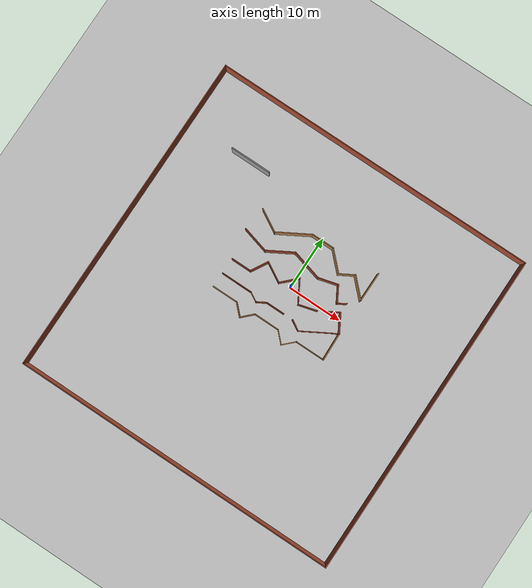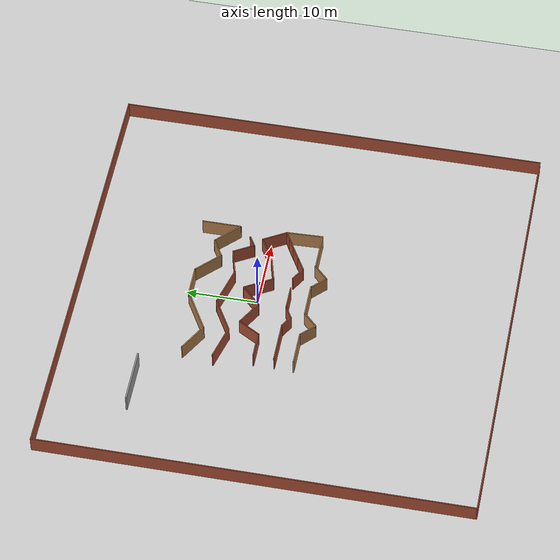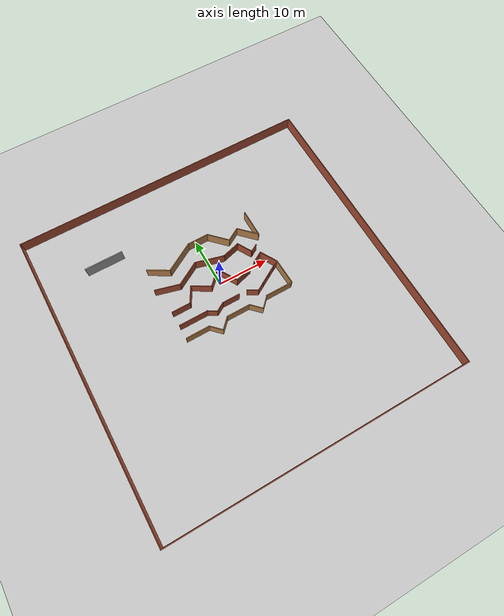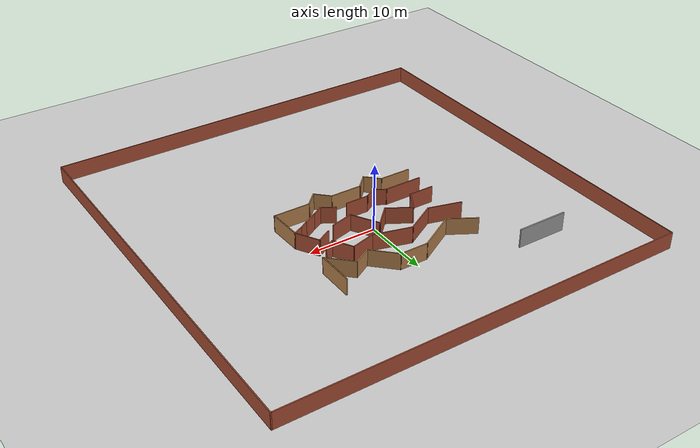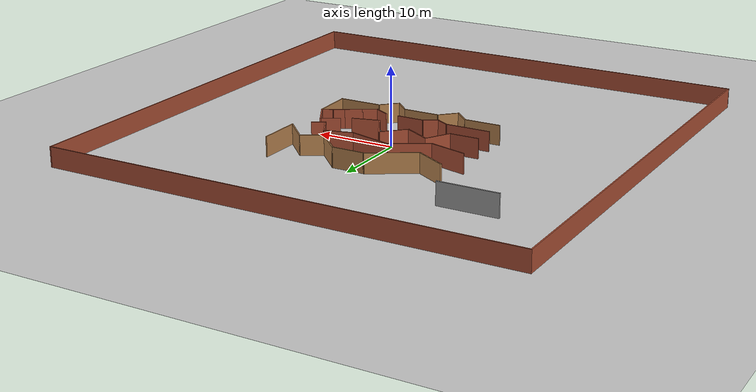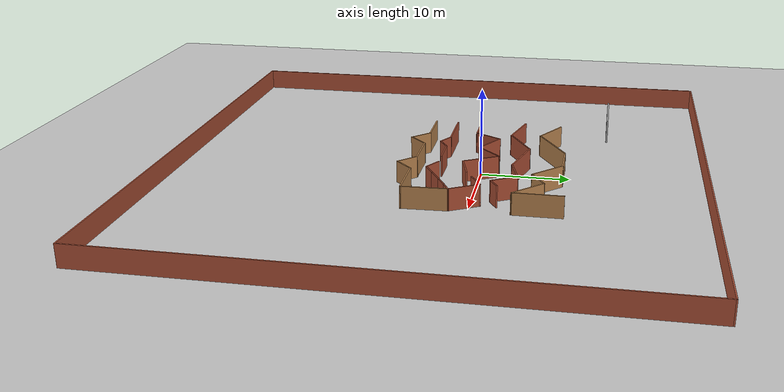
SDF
<sdf version="1.6">
 <world name="default">
  <light name="sun" type="directional">
   <pose>0 0 10 0 -0 0</pose>
   <diffuse>0.8 0.8 0.8 1</diffuse>
   <specular>0.2 0.2 0.2 1</specular>
   <attenuation>
    <range>1000</range>
    <constant>0.9</constant>
    <linear>0.01</linear>
    <quadratic>0.001</quadratic>
   </attenuation>
   <direction>-0.5 0.1 -0.9</direction>
   <spot><inner_angle>0</inner_angle><outer_angle>0</outer_angle><falloff>0</falloff></spot>
  </light>
  <gravity>0 0 -9.8</gravity>
  <magnetic_field>6e-06 2.3e-05 -4.2e-05</magnetic_field>
  <atmosphere type="adiabatic"/>
  <physics name="default_physics" default="0" type="ode">
   <max_step_size>0.001</max_step_size>
   <real_time_factor>1</real_time_factor>
   <real_time_update_rate>1000</real_time_update_rate>
  </physics>
  <scene><ambient>0.4 0.4 0.4 1</ambient><background>0.7 0.7 0.7 1</background><shadows>1</shadows></scene>
  <spherical_coordinates>
   <surface_model>EARTH_WGS84</surface_model>
   <latitude_deg>0</latitude_deg>
   <longitude_deg>0</longitude_deg>
   <elevation>0</elevation>
   <heading_deg>0</heading_deg>
  </spherical_coordinates>
  <model name="ground_plane">
   <static>1</static>
   <link name="link">
    <collision name="collision">
     <geometry><plane><normal>0 0 1</normal><size>100 100</size></plane></geometry>
     <surface>
      <contact><collide_bitmask>65535</collide_bitmask></contact>
      <friction><ode><mu>100</mu><mu2>50</mu2></ode></friction>
     </surface>
    </collision>
    <visual name="visual">
     <cast_shadows>0</cast_shadows>
     <geometry><plane><normal>0 0 1</normal><size>100 100</size></plane></geometry>
     <material>
      <script><uri>file://media/materials/scripts/gazebo.material</uri><name>Gazebo/Grey</name></script>
     </material>
    </visual>
   </link>
   <pose>0.408001 -0.283487 0 0 -0 0</pose>
  </model>
  <model name="road1">
   <pose>-0.21073 0.52345 0 0 -0 0</pose>
   <link name="Wall_11">
    <collision name="Wall_11_Collision">
     <geometry><box><size>4.75 0.15 2.5</size></box></geometry>
     <pose>0 0 1.25 0 -0 0</pose>
    </collision>
    <visual name="Wall_11_Visual">
     <pose>0 0 1.25 0 -0 0</pose>
     <geometry><box><size>4.75 0.15 2.5</size></box></geometry>
     <material>
      <script><uri>file://media/materials/scripts/gazebo.material</uri><name>Gazebo/Wood</name></script>
      <ambient>1 1 1 1</ambient>
     </material>
     <meta><layer>0</layer></meta>
    </visual>
    <pose>-8.19181 -7.53771 0 0 -0 0</pose>
   </link>
   <link name="Wall_12">
    <collision name="Wall_12_Collision">
     <geometry><box><size>2.75 0.15 2.5</size></box></geometry>
     <pose>0 0 1.25 0 -0 0</pose>
    </collision>
    <visual name="Wall_12_Visual">
     <pose>0 0 1.25 0 -0 0</pose>
     <geometry><box><size>2.75 0.15 2.5</size></box></geometry>
     <material>
      <script><uri>file://media/materials/scripts/gazebo.material</uri><name>Gazebo/Wood</name></script>
      <ambient>1 1 1 1</ambient>
     </material>
     <meta><layer>0</layer></meta>
    </visual>
    <pose>-4.97257 -8.45695 0 0 -0 -0.785398</pose>
   </link>
   <link name="Wall_13">
    <collision name="Wall_13_Collision">
     <geometry><box><size>2.75 0.15 2.5</size></box></geometry>
     <pose>0 0 1.25 0 -0 0</pose>
    </collision>
    <visual name="Wall_13_Visual">
     <pose>0 0 1.25 0 -0 0</pose>
     <geometry><box><size>2.75 0.15 2.5</size></box></geometry>
     <material>
      <script><uri>file://media/materials/scripts/gazebo.material</uri><name>Gazebo/Wood</name></script>
      <ambient>1 1 1 1</ambient>
     </material>
     <meta><layer>0</layer></meta>
    </visual>
    <pose>-3.13409 -8.45695 0 0 -0 0.785398</pose>
   </link>
   <link name="Wall_14">
    <collision name="Wall_14_Collision">
     <geometry><box><size>4.75 0.15 2.5</size></box></geometry>
     <pose>0 0 1.25 0 -0 0</pose>
    </collision>
    <visual name="Wall_14_Visual">
     <pose>0 0 1.25 0 -0 0</pose>
     <geometry><box><size>4.75 0.15 2.5</size></box></geometry>
     <material>
      <script><uri>file://media/materials/scripts/gazebo.material</uri><name>Gazebo/Wood</name></script>
      <ambient>1 1 1 1</ambient>
     </material>
     <meta><layer>0</layer></meta>
    </visual>
    <pose>0.085145 -7.53771 0 0 -0 0</pose>
   </link>
   <link name="Wall_15">
    <collision name="Wall_15_Collision">
     <geometry><box><size>2.75 0.15 2.5</size></box></geometry>
     <pose>0 0 1.25 0 -0 0</pose>
    </collision>
    <visual name="Wall_15_Visual">
     <pose>0 0 1.25 0 -0 0</pose>
     <geometry><box><size>2.75 0.15 2.5</size></box></geometry>
     <material>
      <script><uri>file://media/materials/scripts/gazebo.material</uri><name>Gazebo/Wood</name></script>
      <ambient>1 1 1 1</ambient>
     </material>
     <meta><layer>0</layer></meta>
    </visual>
    <pose>3.30438 -8.45695 0 0 -0 -0.785398</pose>
   </link>
   <link name="Wall_16">
    <collision name="Wall_16_Collision">
     <geometry><box><size>2.75 0.15 2.5</size></box></geometry>
     <pose>0 0 1.25 0 -0 0</pose>
    </collision>
    <visual name="Wall_16_Visual">
     <pose>0 0 1.25 0 -0 0</pose>
     <geometry><box><size>2.75 0.15 2.5</size></box></geometry>
     <material>
      <script><uri>file://media/materials/scripts/gazebo.material</uri><name>Gazebo/Wood</name></script>
      <ambient>1 1 1 1</ambient>
     </material>
     <meta><layer>0</layer></meta>
    </visual>
    <pose>5.14286 -8.45695 0 0 -0 0.785398</pose>
   </link>
   <link name="Wall_17">
    <collision name="Wall_17_Collision">
     <geometry><box><size>5.5 0.15 2.5</size></box></geometry>
     <pose>0 0 1.25 0 -0 0</pose>
    </collision>
    <visual name="Wall_17_Visual">
     <pose>0 0 1.25 0 -0 0</pose>
     <geometry><box><size>5.5 0.15 2.5</size></box></geometry>
     <material>
      <script><uri>file://media/materials/scripts/gazebo.material</uri><name>Gazebo/Wood</name></script>
      <ambient>1 1 1 1</ambient>
     </material>
     <meta><layer>0</layer></meta>
    </visual>
    <pose>8.7371 -7.53771 0 0 -0 0</pose>
   </link>
   <link name="Wall_19">
    <collision name="Wall_19_Collision">
     <geometry><box><size>5.75 0.15 2.5</size></box></geometry>
     <pose>0 0 1.25 0 -0 0</pose>
    </collision>
    <visual name="Wall_19_Visual">
     <pose>0 0 1.25 0 -0 0</pose>
     <geometry><box><size>5.75 0.15 2.5</size></box></geometry>
     <material>
      <script><uri>file://media/materials/scripts/gazebo.material</uri><name>Gazebo/Bricks</name></script>
      <ambient>1 1 1 1</ambient>
     </material>
     <meta><layer>0</layer></meta>
    </visual>
    <pose>-7.63063 -4.84577 0 0 -0 0</pose>
   </link>
   <link name="Wall_20">
    <collision name="Wall_20_Collision">
     <geometry><box><size>2 0.15 2.5</size></box></geometry>
     <pose>0 0 1.25 0 -0 0</pose>
    </collision>
    <visual name="Wall_20_Visual">
     <pose>0 0 1.25 0 -0 0</pose>
     <geometry><box><size>2 0.15 2.5</size></box></geometry>
     <material>
      <script><uri>file://media/materials/scripts/gazebo.material</uri><name>Gazebo/Bricks</name></script>
      <ambient>1 1 1 1</ambient>
     </material>
     <meta><layer>0</layer></meta>
    </visual>
    <pose>-4.02956 -5.30827 0 0 -0 -0.523599</pose>
   </link>
   <link name="Wall_21">
    <collision name="Wall_21_Collision">
     <geometry><box><size>2 0.15 2.5</size></box></geometry>
     <pose>0 0 1.25 0 -0 0</pose>
    </collision>
    <visual name="Wall_21_Visual">
     <pose>0 0 1.25 0 -0 0</pose>
     <geometry><box><size>2 0.15 2.5</size></box></geometry>
     <material>
      <script><uri>file://media/materials/scripts/gazebo.material</uri><name>Gazebo/Bricks</name></script>
      <ambient>1 1 1 1</ambient>
     </material>
     <meta><layer>0</layer></meta>
    </visual>
    <pose>-2.42741 -5.30827 0 0 -0 0.523599</pose>
   </link>
   <link name="Wall_23">
    <collision name="Wall_23_Collision">
     <geometry><box><size>2.25 0.15 2.5</size></box></geometry>
     <pose>0 0 1.25 0 -0 0</pose>
    </collision>
    <visual name="Wall_23_Visual">
     <pose>0 0 1.25 0 -0 0</pose>
     <geometry><box><size>2.25 0.15 2.5</size></box></geometry>
     <material>
      <script><uri>file://media/materials/scripts/gazebo.material</uri><name>Gazebo/Bricks</name></script>
      <ambient>1 1 1 1</ambient>
     </material>
     <meta><layer>0</layer></meta>
    </visual>
    <pose>4.38299 -5.37077 0 0 -0 -0.523599</pose>
   </link>
   <link name="Wall_24">
    <collision name="Wall_24_Collision">
     <geometry><box><size>2 0.15 2.5</size></box></geometry>
     <pose>0 0 1.25 0 -0 0</pose>
    </collision>
    <visual name="Wall_24_Visual">
     <pose>0 0 1.25 0 -0 0</pose>
     <geometry><box><size>2 0.15 2.5</size></box></geometry>
     <material>
      <script><uri>file://media/materials/scripts/gazebo.material</uri><name>Gazebo/Bricks</name></script>
      <ambient>1 1 1 1</ambient>
     </material>
     <meta><layer>0</layer></meta>
    </visual>
    <pose>6.09339 -5.43327 0 0 -0 0.523599</pose>
   </link>
   <link name="Wall_28">
    <collision name="Wall_28_Collision">
     <geometry><box><size>3.75 0.15 2.5</size></box></geometry>
     <pose>0 0 1.25 0 -0 0</pose>
    </collision>
    <visual name="Wall_28_Visual">
     <pose>0 0 1.25 0 -0 0</pose>
     <geometry><box><size>3.75 0.15 2.5</size></box></geometry>
     <material>
      <script><uri>file://media/materials/scripts/gazebo.material</uri><name>Gazebo/Bricks</name></script>
      <ambient>1 1 1 1</ambient>
     </material>
     <meta><layer>0</layer></meta>
    </visual>
    <pose>-8.66122 -1.97029 0 0 -0 0</pose>
   </link>
   <link name="Wall_29">
    <collision name="Wall_29_Collision">
     <geometry><box><size>3.5 0.15 2.5</size></box></geometry>
     <pose>0 0 1.25 0 -0 0</pose>
    </collision>
    <visual name="Wall_29_Visual">
     <pose>0 0 1.25 0 -0 0</pose>
     <geometry><box><size>3.5 0.15 2.5</size></box></geometry>
     <material>
      <script><uri>file://media/materials/scripts/gazebo.material</uri><name>Gazebo/Bricks</name></script>
      <ambient>1 1 1 1</ambient>
     </material>
     <meta><layer>0</layer></meta>
    </visual>
    <pose>-6.02372 -0.519697 0 0 -0 1.0472</pose>
   </link>
   <link name="Wall_30">
    <collision name="Wall_30_Collision">
     <geometry><box><size>4 0.15 2.5</size></box></geometry>
     <pose>0 0 1.25 0 -0 0</pose>
    </collision>
    <visual name="Wall_30_Visual">
     <pose>0 0 1.25 0 -0 0</pose>
     <geometry><box><size>4 0.15 2.5</size></box></geometry>
     <material>
      <script><uri>file://media/materials/scripts/gazebo.material</uri><name>Gazebo/Bricks</name></script>
      <ambient>1 1 1 1</ambient>
     </material>
     <meta><layer>0</layer></meta>
    </visual>
    <pose>-3.51912 -0.031604 0 0 -0 -0.523599</pose>
   </link>
   <link name="Wall_31">
    <collision name="Wall_31_Collision">
     <geometry><box><size>3.75 0.15 2.5</size></box></geometry>
     <pose>0 0 1.25 0 -0 0</pose>
    </collision>
    <visual name="Wall_31_Visual">
     <pose>0 0 1.25 0 -0 0</pose>
     <geometry><box><size>3.75 0.15 2.5</size></box></geometry>
     <material>
      <script><uri>file://media/materials/scripts/gazebo.material</uri><name>Gazebo/Bricks</name></script>
      <ambient>1 1 1 1</ambient>
     </material>
     <meta><layer>0</layer></meta>
    </visual>
    <pose>-0.57923 0.278688 0 0 -0 0.785398</pose>
   </link>
   <link name="Wall_32">
    <collision name="Wall_32_Collision">
     <geometry><box><size>4.5 0.15 2.5</size></box></geometry>
     <pose>0 0 1.25 0 -0 0</pose>
    </collision>
    <visual name="Wall_32_Visual">
     <pose>0 0 1.25 0 -0 0</pose>
     <geometry><box><size>4.5 0.15 2.5</size></box></geometry>
     <material>
      <script><uri>file://media/materials/scripts/gazebo.material</uri><name>Gazebo/Bricks</name></script>
      <ambient>1 1 1 1</ambient>
     </material>
     <meta><layer>0</layer></meta>
    </visual>
    <pose>1.78106 -0.332125 0 0 -0 -1.0472</pose>
   </link>
   <link name="Wall_33">
    <collision name="Wall_33_Collision">
     <geometry><box><size>3.5 0.15 2.5</size></box></geometry>
     <pose>0 0 1.25 0 -0 0</pose>
    </collision>
    <visual name="Wall_33_Visual">
     <pose>0 0 1.25 0 -0 0</pose>
     <geometry><box><size>3.5 0.15 2.5</size></box></geometry>
     <material>
      <script><uri>file://media/materials/scripts/gazebo.material</uri><name>Gazebo/Bricks</name></script>
      <ambient>1 1 1 1</ambient>
     </material>
     <meta><layer>0</layer></meta>
    </visual>
    <pose>4.48649 -1.78221 0 0 -0 0.261799</pose>
   </link>
   <link name="Wall_35">
    <collision name="Wall_35_Collision">
     <geometry><box><size>3.75 0.15 2.5</size></box></geometry>
     <pose>0 0 1.25 0 -0 0</pose>
    </collision>
    <visual name="Wall_35_Visual">
     <pose>0 0 1.25 0 -0 0</pose>
     <geometry><box><size>3.75 0.15 2.5</size></box></geometry>
     <material>
      <script><uri>file://media/materials/scripts/gazebo.material</uri><name>Gazebo/Bricks</name></script>
      <ambient>1 1 1 1</ambient>
     </material>
     <meta><layer>0</layer></meta>
    </visual>
    <pose>10.3386 -0.982532 0 0 -0 -1.0472</pose>
   </link>
   <link name="Wall_36">
    <collision name="Wall_36_Collision">
     <geometry><box><size>1.52852 0.15 2.5</size></box></geometry>
     <pose>0 0 1.25 0 -0 0</pose>
    </collision>
    <visual name="Wall_36_Visual">
     <pose>0 0 1.25 0 -0 0</pose>
     <geometry><box><size>1.52852 0.15 2.5</size></box></geometry>
     <material>
      <script><uri>file://media/materials/scripts/gazebo.material</uri><name>Gazebo/Bricks</name></script>
      <ambient>1 1 1 1</ambient>
     </material>
     <meta><layer>0</layer></meta>
    </visual>
    <pose>10.6254 -2.85608 0 0 -0 -2.66746</pose>
   </link>
   <link name="Wall_38">
    <collision name="Wall_38_Collision">
     <geometry><box><size>2.5 0.15 2.5</size></box></geometry>
     <pose>0 0 1.25 0 -0 0</pose>
    </collision>
    <visual name="Wall_38_Visual">
     <pose>0 0 1.25 0 -0 0</pose>
     <geometry><box><size>2.5 0.15 2.5</size></box></geometry>
     <material>
      <script><uri>file://media/materials/scripts/gazebo.material</uri><name>Gazebo/Bricks</name></script>
      <ambient>1 1 1 1</ambient>
     </material>
     <meta><layer>0</layer></meta>
    </visual>
    <pose>8.42103 -0.011187 0 0 -0 -2.61799</pose>
   </link>
   <link name="Wall_40">
    <collision name="Wall_40_Collision">
     <geometry><box><size>2.25 0.15 2.5</size></box></geometry>
     <pose>0 0 1.25 0 -0 0</pose>
    </collision>
    <visual name="Wall_40_Visual">
     <pose>0 0 1.25 0 -0 0</pose>
     <geometry><box><size>2.25 0.15 2.5</size></box></geometry>
     <material>
      <script><uri>file://media/materials/scripts/gazebo.material</uri><name>Gazebo/Bricks</name></script>
      <ambient>1 1 1 1</ambient>
     </material>
     <meta><layer>0</layer></meta>
    </visual>
    <pose>7.80379 -4.44577 0 0 -0 0.523599</pose>
   </link>
   <link name="Wall_42">
    <collision name="Wall_42_Collision">
     <geometry><box><size>5.14934 0.15 2.5</size></box></geometry>
     <pose>0 0 1.25 0 -0 0</pose>
    </collision>
    <visual name="Wall_42_Visual">
     <pose>0 0 1.25 0 -0 0</pose>
     <geometry><box><size>5.14934 0.15 2.5</size></box></geometry>
     <material>
      <script><uri>file://media/materials/scripts/gazebo.material</uri><name>Gazebo/Wood</name></script>
      <ambient>1 1 1 1</ambient>
     </material>
     <meta><layer>0</layer></meta>
    </visual>
    <pose>11.3254 -5.03955 0 0 -0 1.60551</pose>
   </link>
   <link name="Wall_44">
    <collision name="Wall_44_Collision">
     <geometry><box><size>1.65 0.15 2.5</size></box></geometry>
     <pose>0 0 1.25 0 -0 0</pose>
    </collision>
    <visual name="Wall_44_Visual">
     <pose>0 0 1.25 0 -0 0</pose>
     <geometry><box><size>1.65 0.15 2.5</size></box></geometry>
     <material>
      <script><uri>file://media/materials/scripts/gazebo.material</uri><name>Gazebo/Bricks</name></script>
      <ambient>1 1 1 1</ambient>
     </material>
     <meta><layer>0</layer></meta>
    </visual>
    <pose>9.36264 -3.54577 0 0 -0 0.523599</pose>
   </link>
   <link name="Wall_48">
    <collision name="Wall_48_Collision">
     <geometry><box><size>3.5 0.15 2.5</size></box></geometry>
     <pose>0 0 1.25 0 -0 0</pose>
    </collision>
    <visual name="Wall_48_Visual">
     <pose>0 0 1.25 0 -0 0</pose>
     <geometry><box><size>3.5 0.15 2.5</size></box></geometry>
     <material>
      <script><uri>file://media/materials/scripts/gazebo.material</uri><name>Gazebo/Bricks</name></script>
      <ambient>1 1 1 1</ambient>
     </material>
     <meta><layer>0</layer></meta>
    </visual>
    <pose>0.048665 -4.84577 0 0 -0 0</pose>
   </link>
   <link name="Wall_50">
    <collision name="Wall_50_Collision">
     <geometry><box><size>5 0.15 2.5</size></box></geometry>
     <pose>0 0 1.25 0 -0 0</pose>
    </collision>
    <visual name="Wall_50_Visual">
     <pose>0 0 1.25 0 -0 0</pose>
     <geometry><box><size>5 0.15 2.5</size></box></geometry>
     <material>
      <script><uri>file://media/materials/scripts/gazebo.material</uri><name>Gazebo/Bricks</name></script>
      <ambient>1 1 1 1</ambient>
     </material>
     <meta><layer>0</layer></meta>
    </visual>
    <pose>-9.05543 2.81224 0 0 -0 -0.261799</pose>
   </link>
   <link name="Wall_51">
    <collision name="Wall_51_Collision">
     <geometry><box><size>5.25 0.15 2.5</size></box></geometry>
     <pose>0 0 1.25 0 -0 0</pose>
    </collision>
    <visual name="Wall_51_Visual">
     <pose>0 0 1.25 0 -0 0</pose>
     <geometry><box><size>5.25 0.15 2.5</size></box></geometry>
     <material>
      <script><uri>file://media/materials/scripts/gazebo.material</uri><name>Gazebo/Bricks</name></script>
      <ambient>1 1 1 1</ambient>
     </material>
     <meta><layer>0</layer></meta>
    </visual>
    <pose>-4.5047 3.4596 0 0 -0 0.523599</pose>
   </link>
   <link name="Wall_52">
    <collision name="Wall_52_Collision">
     <geometry><box><size>5.75 0.15 2.5</size></box></geometry>
     <pose>0 0 1.25 0 -0 0</pose>
    </collision>
    <visual name="Wall_52_Visual">
     <pose>0 0 1.25 0 -0 0</pose>
     <geometry><box><size>5.75 0.15 2.5</size></box></geometry>
     <material>
      <script><uri>file://media/materials/scripts/gazebo.material</uri><name>Gazebo/Bricks</name></script>
      <ambient>1 1 1 1</ambient>
     </material>
     <meta><layer>0</layer></meta>
    </visual>
    <pose>0.408259 4.00991 0 0 -0 -0.261799</pose>
   </link>
   <link name="Wall_53">
    <collision name="Wall_53_Collision">
     <geometry><box><size>3.75 0.15 2.5</size></box></geometry>
     <pose>0 0 1.25 0 -0 0</pose>
    </collision>
    <visual name="Wall_53_Visual">
     <pose>0 0 1.25 0 -0 0</pose>
     <geometry><box><size>3.75 0.15 2.5</size></box></geometry>
     <material>
      <script><uri>file://media/materials/scripts/gazebo.material</uri><name>Gazebo/Bricks</name></script>
      <ambient>1 1 1 1</ambient>
     </material>
     <meta><layer>0</layer></meta>
    </visual>
    <pose>4.85152 3.75109 0 0 -0 0.261799</pose>
   </link>
   <link name="Wall_54">
    <collision name="Wall_54_Collision">
     <geometry><box><size>3.25 0.15 2.5</size></box></geometry>
     <pose>0 0 1.25 0 -0 0</pose>
    </collision>
    <visual name="Wall_54_Visual">
     <pose>0 0 1.25 0 -0 0</pose>
     <geometry><box><size>3.25 0.15 2.5</size></box></geometry>
     <material>
      <script><uri>file://media/materials/scripts/gazebo.material</uri><name>Gazebo/Bricks</name></script>
      <ambient>1 1 1 1</ambient>
     </material>
     <meta><layer>0</layer></meta>
    </visual>
    <pose>7.36519 2.87463 0 0 -0 -1.0472</pose>
   </link>
   <link name="Wall_55">
    <collision name="Wall_55_Collision">
     <geometry><box><size>1.75 0.15 2.5</size></box></geometry>
     <pose>0 0 1.25 0 -0 0</pose>
    </collision>
    <visual name="Wall_55_Visual">
     <pose>0 0 1.25 0 -0 0</pose>
     <geometry><box><size>1.75 0.15 2.5</size></box></geometry>
     <material>
      <script><uri>file://media/materials/scripts/gazebo.material</uri><name>Gazebo/Bricks</name></script>
      <ambient>1 1 1 1</ambient>
     </material>
     <meta><layer>0</layer></meta>
    </visual>
    <pose>8.833 1.93229 0 0 -0 0.523599</pose>
   </link>
   <link name="Wall_57">
    <collision name="Wall_57_Collision">
     <geometry><box><size>4.5 0.15 2.5</size></box></geometry>
     <pose>0 0 1.25 0 -0 0</pose>
    </collision>
    <visual name="Wall_57_Visual">
     <pose>0 0 1.25 0 -0 0</pose>
     <geometry><box><size>4.5 0.15 2.5</size></box></geometry>
     <material>
      <script><uri>file://media/materials/scripts/gazebo.material</uri><name>Gazebo/Wood</name></script>
      <ambient>1 1 1 1</ambient>
     </material>
     <meta><layer>0</layer></meta>
    </visual>
    <pose>-8.96765 6.69658 0 0 -0 -0.523599</pose>
   </link>
   <link name="Wall_58">
    <collision name="Wall_58_Collision">
     <geometry><box><size>6.5 0.15 2.5</size></box></geometry>
     <pose>0 0 1.25 0 -0 0</pose>
    </collision>
    <visual name="Wall_58_Visual">
     <pose>0 0 1.25 0 -0 0</pose>
     <geometry><box><size>6.5 0.15 2.5</size></box></geometry>
     <material>
      <script><uri>file://media/materials/scripts/gazebo.material</uri><name>Gazebo/Wood</name></script>
      <ambient>1 1 1 1</ambient>
     </material>
     <meta><layer>0</layer></meta>
    </visual>
    <pose>-4.33442 7.19658 0 0 -0 0.523599</pose>
   </link>
   <link name="Wall_59">
    <collision name="Wall_59_Collision">
     <geometry><box><size>4.25 0.15 2.5</size></box></geometry>
     <pose>0 0 1.25 0 -0 0</pose>
    </collision>
    <visual name="Wall_59_Visual">
     <pose>0 0 1.25 0 -0 0</pose>
     <geometry><box><size>4.25 0.15 2.5</size></box></geometry>
     <material>
      <script><uri>file://media/materials/scripts/gazebo.material</uri><name>Gazebo/Wood</name></script>
      <ambient>1 1 1 1</ambient>
     </material>
     <meta><layer>0</layer></meta>
    </visual>
    <pose>0.465213 8.78408 0 0 -0 0</pose>
   </link>
   <link name="Wall_60">
    <collision name="Wall_60_Collision">
     <geometry><box><size>4.5 0.15 2.5</size></box></geometry>
     <pose>0 0 1.25 0 -0 0</pose>
    </collision>
    <visual name="Wall_60_Visual">
     <pose>0 0 1.25 0 -0 0</pose>
     <geometry><box><size>4.5 0.15 2.5</size></box></geometry>
     <material>
      <script><uri>file://media/materials/scripts/gazebo.material</uri><name>Gazebo/Wood</name></script>
      <ambient>1 1 1 1</ambient>
     </material>
     <meta><layer>0</layer></meta>
    </visual>
    <pose>4.05317 7.24613 0 0 -0 -0.785398</pose>
   </link>
   <link name="Wall_61">
    <collision name="Wall_61_Collision">
     <geometry><box><size>3 0.15 2.5</size></box></geometry>
     <pose>0 0 1.25 0 -0 0</pose>
    </collision>
    <visual name="Wall_61_Visual">
     <pose>0 0 1.25 0 -0 0</pose>
     <geometry><box><size>3 0.15 2.5</size></box></geometry>
     <material>
      <script><uri>file://media/materials/scripts/gazebo.material</uri><name>Gazebo/Wood</name></script>
      <ambient>1 1 1 1</ambient>
     </material>
     <meta><layer>0</layer></meta>
    </visual>
    <pose>6.82521 6.42067 0 0 -0 0.523599</pose>
   </link>
   <link name="Wall_62">
    <collision name="Wall_62_Collision">
     <geometry><box><size>4.5 0.15 2.5</size></box></geometry>
     <pose>0 0 1.25 0 -0 0</pose>
    </collision>
    <visual name="Wall_62_Visual">
     <pose>0 0 1.25 0 -0 0</pose>
     <geometry><box><size>4.5 0.15 2.5</size></box></geometry>
     <material>
      <script><uri>file://media/materials/scripts/gazebo.material</uri><name>Gazebo/Wood</name></script>
      <ambient>1 1 1 1</ambient>
     </material>
     <meta><layer>0</layer></meta>
    </visual>
    <pose>9.59726 5.59521 0 0 -0 -0.785398</pose>
   </link>
   <link name="Wall_64">
    <collision name="Wall_64_Collision">
     <geometry><box><size>5.5 0.15 2.5</size></box></geometry>
     <pose>0 0 1.25 0 -0 0</pose>
    </collision>
    <visual name="Wall_64_Visual">
     <pose>0 0 1.25 0 -0 0</pose>
     <geometry><box><size>5.5 0.15 2.5</size></box></geometry>
     <material>
      <script><uri>file://media/materials/scripts/gazebo.material</uri><name>Gazebo/Wood</name></script>
      <ambient>1 1 1 1</ambient>
     </material>
     <meta><layer>0</layer></meta>
    </visual>
    <pose>11.1352 6.73226 0 0 -0 1.5708</pose>
   </link>
   <static>1</static>
  </model>
  <model name="grey_wall_clone">
   <static>1</static>
   <link name="link">
    <pose>0 0 1.4 0 -0 0</pose>
    <collision name="collision"><geometry><box><size>7.5 0.2 2.8</size></box></geometry></collision>
    <visual name="visual">
     <cast_shadows>0</cast_shadows>
     <geometry><box><size>7.5 0.2 2.8</size></box></geometry>
     <material>
      <script>
       <uri>model://grey_wall/materials/scripts</uri>
       <uri>model://grey_wall/materials/textures</uri>
       <name>vrc/grey_wall</name>
      </script>
     </material>
    </visual>
   </link>
   <pose>-17.255 13.8824 0 0 -0 0</pose>
  </model>
  <model name="wall2">
   <pose>0.250482 -5.0392 0 0 -0 0</pose>
   <link name="Wall_79">
    <collision name="Wall_79_Collision">
     <geometry><box><size>60 0.15 2.5</size></box></geometry>
     <pose>0 0 1.25 0 -0 0</pose>
    </collision>
    <visual name="Wall_79_Visual">
     <pose>0 0 1.25 0 -0 0</pose>
     <geometry><box><size>60 0.15 2.5</size></box></geometry>
     <material>
      <script><uri>file://media/materials/scripts/gazebo.material</uri><name>Gazebo/Bricks</name></script>
      <ambient>1 1 1 1</ambient>
     </material>
     <meta><layer>0</layer></meta>
    </visual>
    <pose>-1e-06 -29.925 0 0 -0 0</pose>
   </link>
   <link name="Wall_82">
    <collision name="Wall_82_Collision">
     <geometry><box><size>60 0.15 2.5</size></box></geometry>
     <pose>0 0 1.25 0 -0 0</pose>
    </collision>
    <visual name="Wall_82_Visual">
     <pose>0 0 1.25 0 -0 0</pose>
     <geometry><box><size>60 0.15 2.5</size></box></geometry>
     <material>
      <script><uri>file://media/materials/scripts/gazebo.material</uri><name>Gazebo/Bricks</name></script>
      <ambient>1 1 1 1</ambient>
     </material>
     <meta><layer>0</layer></meta>
    </visual>
    <pose>-29.925 0 0 0 -0 1.5708</pose>
   </link>
   <link name="Wall_84">
    <collision name="Wall_84_Collision">
     <geometry><box><size>60 0.15 2.5</size></box></geometry>
     <pose>0 0 1.25 0 -0 0</pose>
    </collision>
    <visual name="Wall_84_Visual">
     <pose>0 0 1.25 0 -0 0</pose>
     <geometry><box><size>60 0.15 2.5</size></box></geometry>
     <material>
      <script><uri>file://media/materials/scripts/gazebo.material</uri><name>Gazebo/Bricks</name></script>
      <ambient>1 1 1 1</ambient>
     </material>
     <meta><layer>0</layer></meta>
    </visual>
    <pose>29.925 0 0 0 -0 1.5708</pose>
   </link>
   <link name="Wall_96">
    <collision name="Wall_96_Collision">
     <geometry><box><size>60 0.15 2.5</size></box></geometry>
     <pose>0 0 1.25 0 -0 0</pose>
    </collision>
    <visual name="Wall_96_Visual">
     <pose>0 0 1.25 0 -0 0</pose>
     <geometry><box><size>60 0.15 2.5</size></box></geometry>
     <material>
      <script><uri>file://media/materials/scripts/gazebo.material</uri><name>Gazebo/Bricks</name></script>
      <ambient>1 1 1 1</ambient>
     </material>
     <meta><layer>0</layer></meta>
    </visual>
    <pose>-1e-06 29.925 0 0 -0 3.14159</pose>
   </link>
   <static>1</static>
  </model>
  <audio><device>default</device></audio>
 </world>
</sdf>
